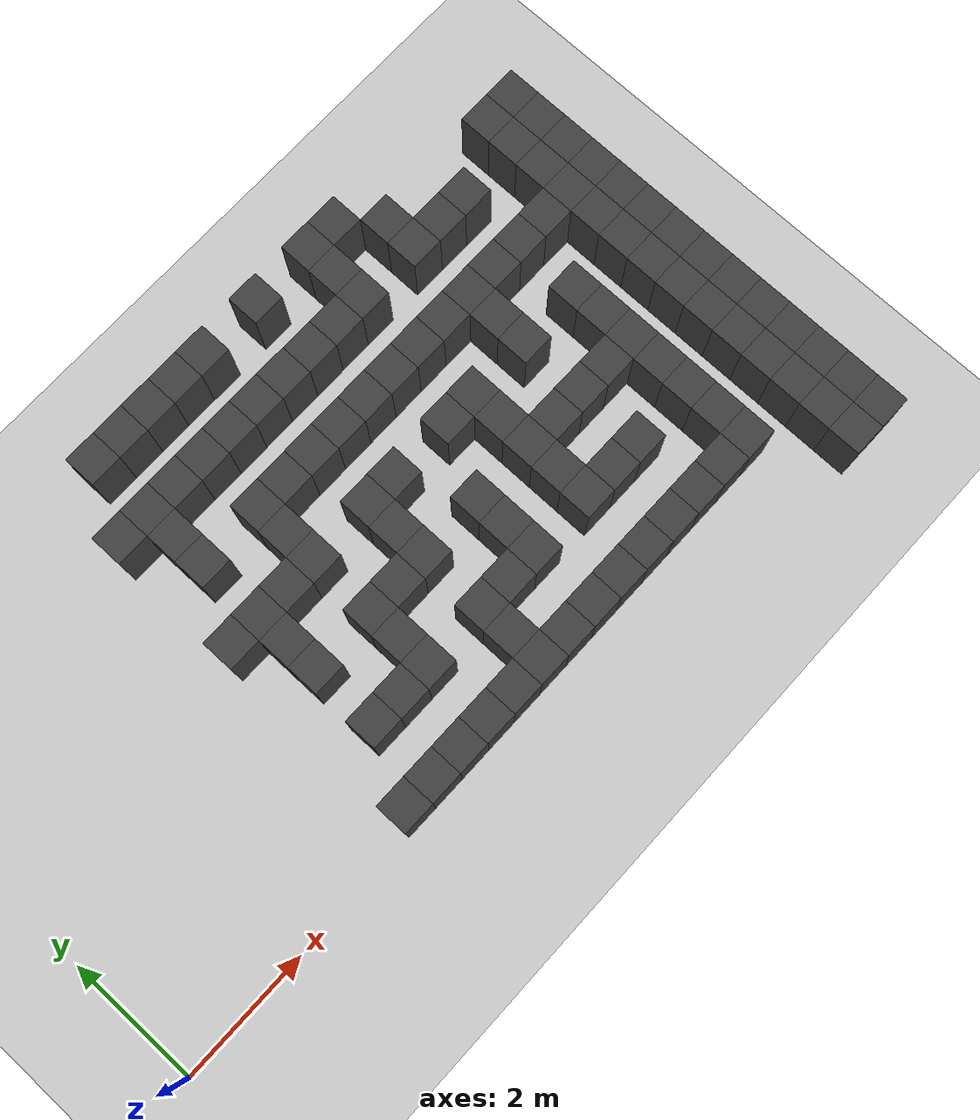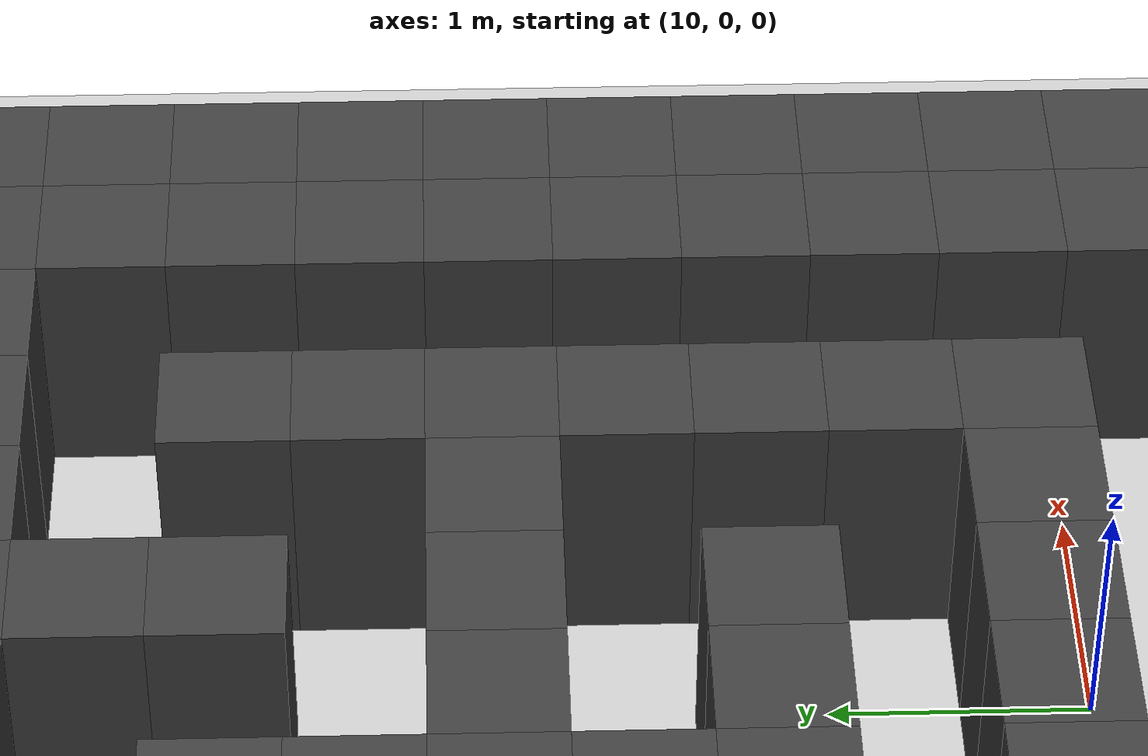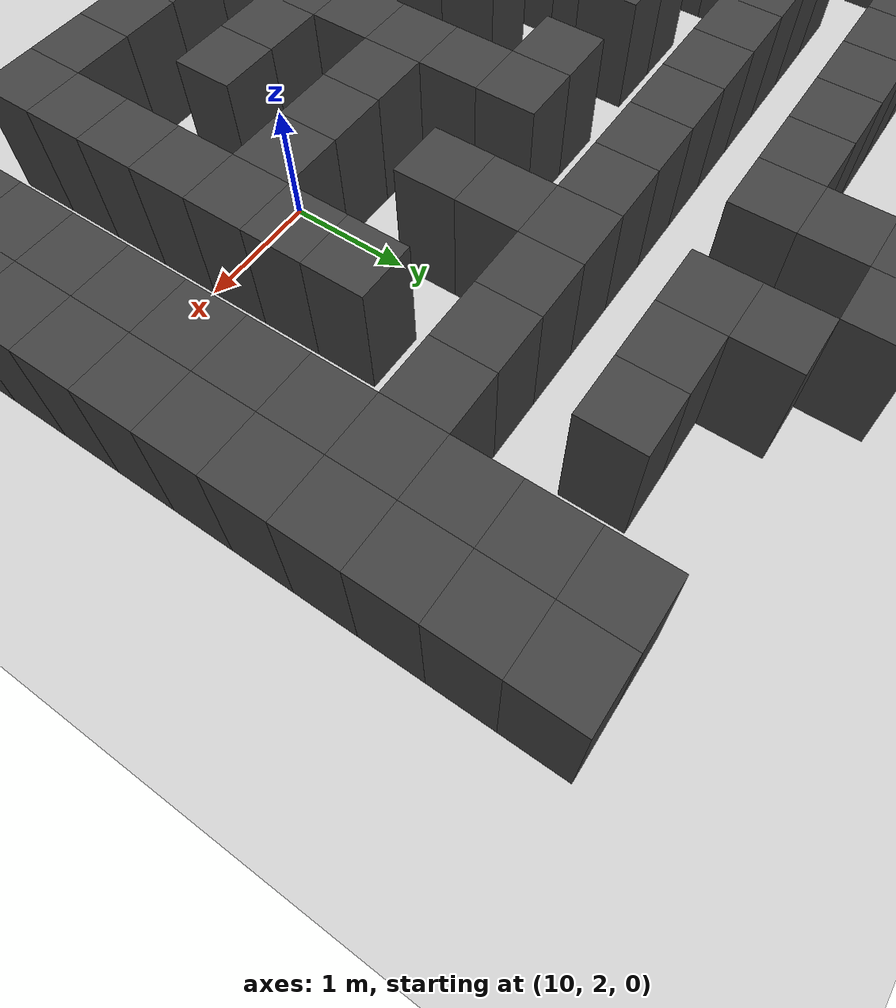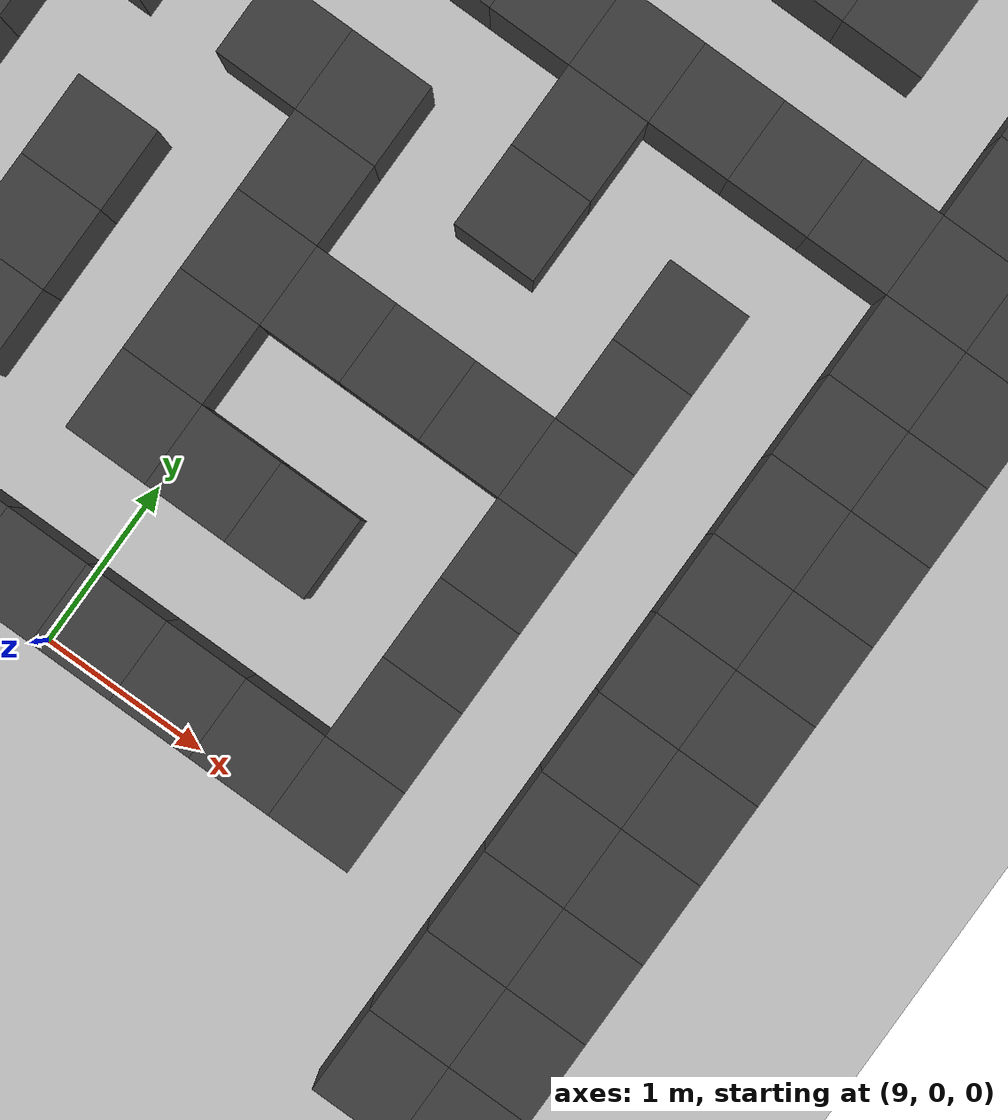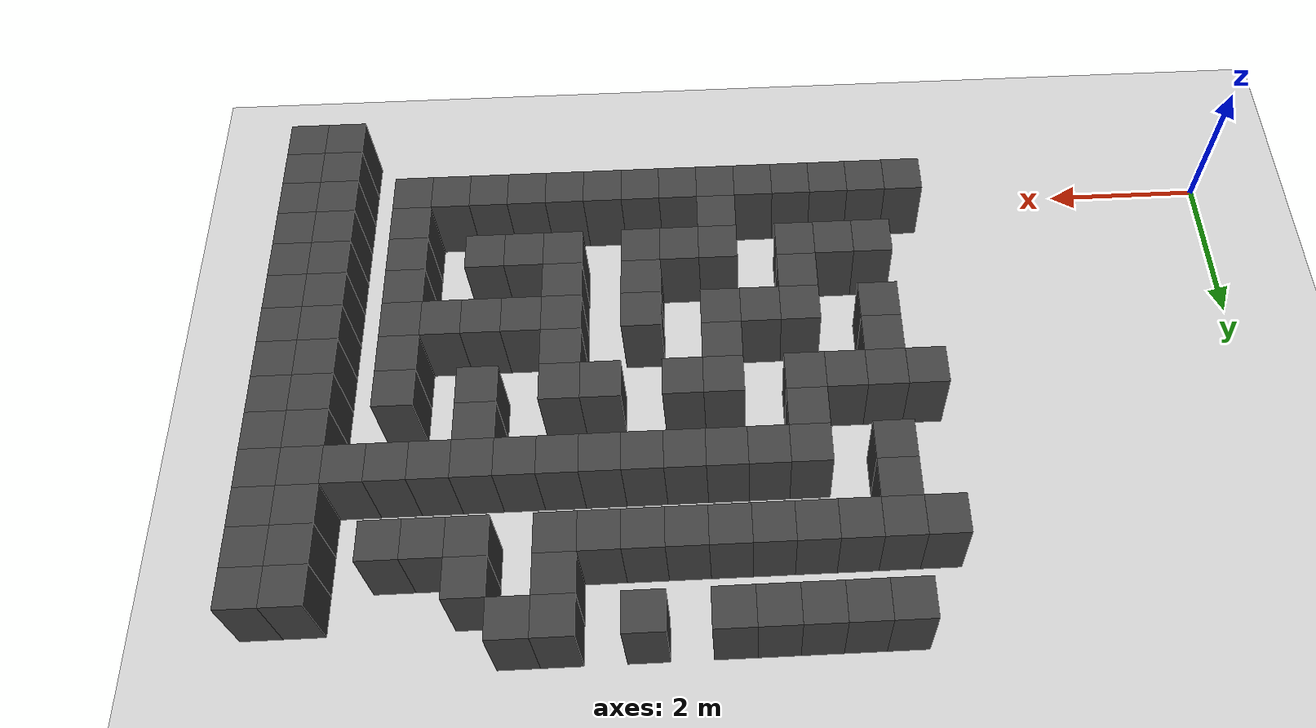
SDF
<sdf version="1.7">
 <world name="map_19217">
  <model name="ground_plane">
   <static>true</static>
   <link name="link">
    <collision name="collision">
     <geometry><plane><normal>0 0 1</normal><size>200 200</size></plane></geometry>
    </collision>
    <visual name="visual">
     <geometry><plane><normal>0 0 1</normal><size>200 200</size></plane></geometry>
     <material><ambient>0.8 0.8 0.8 1</ambient><diffuse>0.8 0.8 0.8 1</diffuse></material>
    </visual>
   </link>
  </model>
  <model name="maze_environment">
   <static>true</static>
   <link name="wall_337">
    <pose>4.750 6.250 0.500 0 0 0</pose>
    <collision name="col"><geometry><box><size>0.5 0.5 1.0</size></box></geometry></collision>
    <visual name="vis">
     <geometry><box><size>0.5 0.5 1.0</size></box></geometry>
     <material><ambient>0.15 0.15 0.15 1</ambient><diffuse>0.25 0.25 0.25 1</diffuse></material>
    </visual>
   </link>
   <link name="wall_338">
    <pose>5.250 6.250 0.500 0 0 0</pose>
    <collision name="col"><geometry><box><size>0.5 0.5 1.0</size></box></geometry></collision>
    <visual name="vis">
     <geometry><box><size>0.5 0.5 1.0</size></box></geometry>
     <material><ambient>0.15 0.15 0.15 1</ambient><diffuse>0.25 0.25 0.25 1</diffuse></material>
    </visual>
   </link>
   <link name="wall_339">
    <pose>5.750 6.250 0.500 0 0 0</pose>
    <collision name="col"><geometry><box><size>0.5 0.5 1.0</size></box></geometry></collision>
    <visual name="vis">
     <geometry><box><size>0.5 0.5 1.0</size></box></geometry>
     <material><ambient>0.15 0.15 0.15 1</ambient><diffuse>0.25 0.25 0.25 1</diffuse></material>
    </visual>
   </link>
   <link name="wall_340">
    <pose>6.250 6.250 0.500 0 0 0</pose>
    <collision name="col"><geometry><box><size>0.5 0.5 1.0</size></box></geometry></collision>
    <visual name="vis">
     <geometry><box><size>0.5 0.5 1.0</size></box></geometry>
     <material><ambient>0.15 0.15 0.15 1</ambient><diffuse>0.25 0.25 0.25 1</diffuse></material>
    </visual>
   </link>
   <link name="wall_341">
    <pose>6.750 6.250 0.500 0 0 0</pose>
    <collision name="col"><geometry><box><size>0.5 0.5 1.0</size></box></geometry></collision>
    <visual name="vis">
     <geometry><box><size>0.5 0.5 1.0</size></box></geometry>
     <material><ambient>0.15 0.15 0.15 1</ambient><diffuse>0.25 0.25 0.25 1</diffuse></material>
    </visual>
   </link>
   <link name="wall_342">
    <pose>7.750 6.250 0.500 0 0 0</pose>
    <collision name="col"><geometry><box><size>0.5 0.5 1.0</size></box></geometry></collision>
    <visual name="vis">
     <geometry><box><size>0.5 0.5 1.0</size></box></geometry>
     <material><ambient>0.15 0.15 0.15 1</ambient><diffuse>0.25 0.25 0.25 1</diffuse></material>
    </visual>
   </link>
   <link name="wall_343">
    <pose>8.750 6.250 0.500 0 0 0</pose>
    <collision name="col"><geometry><box><size>0.5 0.5 1.0</size></box></geometry></collision>
    <visual name="vis">
     <geometry><box><size>0.5 0.5 1.0</size></box></geometry>
     <material><ambient>0.15 0.15 0.15 1</ambient><diffuse>0.25 0.25 0.25 1</diffuse></material>
    </visual>
   </link>
   <link name="wall_344">
    <pose>9.250 6.250 0.500 0 0 0</pose>
    <collision name="col"><geometry><box><size>0.5 0.5 1.0</size></box></geometry></collision>
    <visual name="vis">
     <geometry><box><size>0.5 0.5 1.0</size></box></geometry>
     <material><ambient>0.15 0.15 0.15 1</ambient><diffuse>0.25 0.25 0.25 1</diffuse></material>
    </visual>
   </link>
   <link name="wall_359">
    <pose>8.750 5.750 0.500 0 0 0</pose>
    <collision name="col"><geometry><box><size>0.5 0.5 1.0</size></box></geometry></collision>
    <visual name="vis">
     <geometry><box><size>0.5 0.5 1.0</size></box></geometry>
     <material><ambient>0.15 0.15 0.15 1</ambient><diffuse>0.25 0.25 0.25 1</diffuse></material>
    </visual>
   </link>
   <link name="wall_360">
    <pose>9.750 5.750 0.500 0 0 0</pose>
    <collision name="col"><geometry><box><size>0.5 0.5 1.0</size></box></geometry></collision>
    <visual name="vis">
     <geometry><box><size>0.5 0.5 1.0</size></box></geometry>
     <material><ambient>0.15 0.15 0.15 1</ambient><diffuse>0.25 0.25 0.25 1</diffuse></material>
    </visual>
   </link>
   <link name="wall_361">
    <pose>11.750 5.750 0.500 0 0 0</pose>
    <collision name="col"><geometry><box><size>0.5 0.5 1.0</size></box></geometry></collision>
    <visual name="vis">
     <geometry><box><size>0.5 0.5 1.0</size></box></geometry>
     <material><ambient>0.15 0.15 0.15 1</ambient><diffuse>0.25 0.25 0.25 1</diffuse></material>
    </visual>
   </link>
   <link name="wall_362">
    <pose>12.250 5.750 0.500 0 0 0</pose>
    <collision name="col"><geometry><box><size>0.5 0.5 1.0</size></box></geometry></collision>
    <visual name="vis">
     <geometry><box><size>0.5 0.5 1.0</size></box></geometry>
     <material><ambient>0.15 0.15 0.15 1</ambient><diffuse>0.25 0.25 0.25 1</diffuse></material>
    </visual>
   </link>
   <link name="wall_387">
    <pose>4.250 5.250 0.500 0 0 0</pose>
    <collision name="col"><geometry><box><size>0.5 0.5 1.0</size></box></geometry></collision>
    <visual name="vis">
     <geometry><box><size>0.5 0.5 1.0</size></box></geometry>
     <material><ambient>0.15 0.15 0.15 1</ambient><diffuse>0.25 0.25 0.25 1</diffuse></material>
    </visual>
   </link>
   <link name="wall_388">
    <pose>4.750 5.250 0.500 0 0 0</pose>
    <collision name="col"><geometry><box><size>0.5 0.5 1.0</size></box></geometry></collision>
    <visual name="vis">
     <geometry><box><size>0.5 0.5 1.0</size></box></geometry>
     <material><ambient>0.15 0.15 0.15 1</ambient><diffuse>0.25 0.25 0.25 1</diffuse></material>
    </visual>
   </link>
   <link name="wall_389">
    <pose>5.250 5.250 0.500 0 0 0</pose>
    <collision name="col"><geometry><box><size>0.5 0.5 1.0</size></box></geometry></collision>
    <visual name="vis">
     <geometry><box><size>0.5 0.5 1.0</size></box></geometry>
     <material><ambient>0.15 0.15 0.15 1</ambient><diffuse>0.25 0.25 0.25 1</diffuse></material>
    </visual>
   </link>
   <link name="wall_390">
    <pose>5.750 5.250 0.500 0 0 0</pose>
    <collision name="col"><geometry><box><size>0.5 0.5 1.0</size></box></geometry></collision>
    <visual name="vis">
     <geometry><box><size>0.5 0.5 1.0</size></box></geometry>
     <material><ambient>0.15 0.15 0.15 1</ambient><diffuse>0.25 0.25 0.25 1</diffuse></material>
    </visual>
   </link>
   <link name="wall_391">
    <pose>6.250 5.250 0.500 0 0 0</pose>
    <collision name="col"><geometry><box><size>0.5 0.5 1.0</size></box></geometry></collision>
    <visual name="vis">
     <geometry><box><size>0.5 0.5 1.0</size></box></geometry>
     <material><ambient>0.15 0.15 0.15 1</ambient><diffuse>0.25 0.25 0.25 1</diffuse></material>
    </visual>
   </link>
   <link name="wall_392">
    <pose>6.750 5.250 0.500 0 0 0</pose>
    <collision name="col"><geometry><box><size>0.5 0.5 1.0</size></box></geometry></collision>
    <visual name="vis">
     <geometry><box><size>0.5 0.5 1.0</size></box></geometry>
     <material><ambient>0.15 0.15 0.15 1</ambient><diffuse>0.25 0.25 0.25 1</diffuse></material>
    </visual>
   </link>
   <link name="wall_393">
    <pose>7.250 5.250 0.500 0 0 0</pose>
    <collision name="col"><geometry><box><size>0.5 0.5 1.0</size></box></geometry></collision>
    <visual name="vis">
     <geometry><box><size>0.5 0.5 1.0</size></box></geometry>
     <material><ambient>0.15 0.15 0.15 1</ambient><diffuse>0.25 0.25 0.25 1</diffuse></material>
    </visual>
   </link>
   <link name="wall_394">
    <pose>7.750 5.250 0.500 0 0 0</pose>
    <collision name="col"><geometry><box><size>0.5 0.5 1.0</size></box></geometry></collision>
    <visual name="vis">
     <geometry><box><size>0.5 0.5 1.0</size></box></geometry>
     <material><ambient>0.15 0.15 0.15 1</ambient><diffuse>0.25 0.25 0.25 1</diffuse></material>
    </visual>
   </link>
   <link name="wall_395">
    <pose>8.250 5.250 0.500 0 0 0</pose>
    <collision name="col"><geometry><box><size>0.5 0.5 1.0</size></box></geometry></collision>
    <visual name="vis">
     <geometry><box><size>0.5 0.5 1.0</size></box></geometry>
     <material><ambient>0.15 0.15 0.15 1</ambient><diffuse>0.25 0.25 0.25 1</diffuse></material>
    </visual>
   </link>
   <link name="wall_396">
    <pose>8.750 5.250 0.500 0 0 0</pose>
    <collision name="col"><geometry><box><size>0.5 0.5 1.0</size></box></geometry></collision>
    <visual name="vis">
     <geometry><box><size>0.5 0.5 1.0</size></box></geometry>
     <material><ambient>0.15 0.15 0.15 1</ambient><diffuse>0.25 0.25 0.25 1</diffuse></material>
    </visual>
   </link>
   <link name="wall_397">
    <pose>9.750 5.250 0.500 0 0 0</pose>
    <collision name="col"><geometry><box><size>0.5 0.5 1.0</size></box></geometry></collision>
    <visual name="vis">
     <geometry><box><size>0.5 0.5 1.0</size></box></geometry>
     <material><ambient>0.15 0.15 0.15 1</ambient><diffuse>0.25 0.25 0.25 1</diffuse></material>
    </visual>
   </link>
   <link name="wall_398">
    <pose>10.250 5.250 0.500 0 0 0</pose>
    <collision name="col"><geometry><box><size>0.5 0.5 1.0</size></box></geometry></collision>
    <visual name="vis">
     <geometry><box><size>0.5 0.5 1.0</size></box></geometry>
     <material><ambient>0.15 0.15 0.15 1</ambient><diffuse>0.25 0.25 0.25 1</diffuse></material>
    </visual>
   </link>
   <link name="wall_399">
    <pose>10.750 5.250 0.500 0 0 0</pose>
    <collision name="col"><geometry><box><size>0.5 0.5 1.0</size></box></geometry></collision>
    <visual name="vis">
     <geometry><box><size>0.5 0.5 1.0</size></box></geometry>
     <material><ambient>0.15 0.15 0.15 1</ambient><diffuse>0.25 0.25 0.25 1</diffuse></material>
    </visual>
   </link>
   <link name="wall_400">
    <pose>11.750 5.250 0.500 0 0 0</pose>
    <collision name="col"><geometry><box><size>0.5 0.5 1.0</size></box></geometry></collision>
    <visual name="vis">
     <geometry><box><size>0.5 0.5 1.0</size></box></geometry>
     <material><ambient>0.15 0.15 0.15 1</ambient><diffuse>0.25 0.25 0.25 1</diffuse></material>
    </visual>
   </link>
   <link name="wall_401">
    <pose>12.250 5.250 0.500 0 0 0</pose>
    <collision name="col"><geometry><box><size>0.5 0.5 1.0</size></box></geometry></collision>
    <visual name="vis">
     <geometry><box><size>0.5 0.5 1.0</size></box></geometry>
     <material><ambient>0.15 0.15 0.15 1</ambient><diffuse>0.25 0.25 0.25 1</diffuse></material>
    </visual>
   </link>
   <link name="wall_410">
    <pose>4.750 4.750 0.500 0 0 0</pose>
    <collision name="col"><geometry><box><size>0.5 0.5 1.0</size></box></geometry></collision>
    <visual name="vis">
     <geometry><box><size>0.5 0.5 1.0</size></box></geometry>
     <material><ambient>0.15 0.15 0.15 1</ambient><diffuse>0.25 0.25 0.25 1</diffuse></material>
    </visual>
   </link>
   <link name="wall_411">
    <pose>11.750 4.750 0.500 0 0 0</pose>
    <collision name="col"><geometry><box><size>0.5 0.5 1.0</size></box></geometry></collision>
    <visual name="vis">
     <geometry><box><size>0.5 0.5 1.0</size></box></geometry>
     <material><ambient>0.15 0.15 0.15 1</ambient><diffuse>0.25 0.25 0.25 1</diffuse></material>
    </visual>
   </link>
   <link name="wall_412">
    <pose>12.250 4.750 0.500 0 0 0</pose>
    <collision name="col"><geometry><box><size>0.5 0.5 1.0</size></box></geometry></collision>
    <visual name="vis">
     <geometry><box><size>0.5 0.5 1.0</size></box></geometry>
     <material><ambient>0.15 0.15 0.15 1</ambient><diffuse>0.25 0.25 0.25 1</diffuse></material>
    </visual>
   </link>
   <link name="wall_439">
    <pose>4.750 4.250 0.500 0 0 0</pose>
    <collision name="col"><geometry><box><size>0.5 0.5 1.0</size></box></geometry></collision>
    <visual name="vis">
     <geometry><box><size>0.5 0.5 1.0</size></box></geometry>
     <material><ambient>0.15 0.15 0.15 1</ambient><diffuse>0.25 0.25 0.25 1</diffuse></material>
    </visual>
   </link>
   <link name="wall_440">
    <pose>5.750 4.250 0.500 0 0 0</pose>
    <collision name="col"><geometry><box><size>0.5 0.5 1.0</size></box></geometry></collision>
    <visual name="vis">
     <geometry><box><size>0.5 0.5 1.0</size></box></geometry>
     <material><ambient>0.15 0.15 0.15 1</ambient><diffuse>0.25 0.25 0.25 1</diffuse></material>
    </visual>
   </link>
   <link name="wall_441">
    <pose>6.250 4.250 0.500 0 0 0</pose>
    <collision name="col"><geometry><box><size>0.5 0.5 1.0</size></box></geometry></collision>
    <visual name="vis">
     <geometry><box><size>0.5 0.5 1.0</size></box></geometry>
     <material><ambient>0.15 0.15 0.15 1</ambient><diffuse>0.25 0.25 0.25 1</diffuse></material>
    </visual>
   </link>
   <link name="wall_442">
    <pose>6.750 4.250 0.500 0 0 0</pose>
    <collision name="col"><geometry><box><size>0.5 0.5 1.0</size></box></geometry></collision>
    <visual name="vis">
     <geometry><box><size>0.5 0.5 1.0</size></box></geometry>
     <material><ambient>0.15 0.15 0.15 1</ambient><diffuse>0.25 0.25 0.25 1</diffuse></material>
    </visual>
   </link>
   <link name="wall_443">
    <pose>7.250 4.250 0.500 0 0 0</pose>
    <collision name="col"><geometry><box><size>0.5 0.5 1.0</size></box></geometry></collision>
    <visual name="vis">
     <geometry><box><size>0.5 0.5 1.0</size></box></geometry>
     <material><ambient>0.15 0.15 0.15 1</ambient><diffuse>0.25 0.25 0.25 1</diffuse></material>
    </visual>
   </link>
   <link name="wall_444">
    <pose>7.750 4.250 0.500 0 0 0</pose>
    <collision name="col"><geometry><box><size>0.5 0.5 1.0</size></box></geometry></collision>
    <visual name="vis">
     <geometry><box><size>0.5 0.5 1.0</size></box></geometry>
     <material><ambient>0.15 0.15 0.15 1</ambient><diffuse>0.25 0.25 0.25 1</diffuse></material>
    </visual>
   </link>
   <link name="wall_445">
    <pose>8.250 4.250 0.500 0 0 0</pose>
    <collision name="col"><geometry><box><size>0.5 0.5 1.0</size></box></geometry></collision>
    <visual name="vis">
     <geometry><box><size>0.5 0.5 1.0</size></box></geometry>
     <material><ambient>0.15 0.15 0.15 1</ambient><diffuse>0.25 0.25 0.25 1</diffuse></material>
    </visual>
   </link>
   <link name="wall_446">
    <pose>8.750 4.250 0.500 0 0 0</pose>
    <collision name="col"><geometry><box><size>0.5 0.5 1.0</size></box></geometry></collision>
    <visual name="vis">
     <geometry><box><size>0.5 0.5 1.0</size></box></geometry>
     <material><ambient>0.15 0.15 0.15 1</ambient><diffuse>0.25 0.25 0.25 1</diffuse></material>
    </visual>
   </link>
   <link name="wall_447">
    <pose>9.250 4.250 0.500 0 0 0</pose>
    <collision name="col"><geometry><box><size>0.5 0.5 1.0</size></box></geometry></collision>
    <visual name="vis">
     <geometry><box><size>0.5 0.5 1.0</size></box></geometry>
     <material><ambient>0.15 0.15 0.15 1</ambient><diffuse>0.25 0.25 0.25 1</diffuse></material>
    </visual>
   </link>
   <link name="wall_448">
    <pose>9.750 4.250 0.500 0 0 0</pose>
    <collision name="col"><geometry><box><size>0.5 0.5 1.0</size></box></geometry></collision>
    <visual name="vis">
     <geometry><box><size>0.5 0.5 1.0</size></box></geometry>
     <material><ambient>0.15 0.15 0.15 1</ambient><diffuse>0.25 0.25 0.25 1</diffuse></material>
    </visual>
   </link>
   <link name="wall_449">
    <pose>10.250 4.250 0.500 0 0 0</pose>
    <collision name="col"><geometry><box><size>0.5 0.5 1.0</size></box></geometry></collision>
    <visual name="vis">
     <geometry><box><size>0.5 0.5 1.0</size></box></geometry>
     <material><ambient>0.15 0.15 0.15 1</ambient><diffuse>0.25 0.25 0.25 1</diffuse></material>
    </visual>
   </link>
   <link name="wall_450">
    <pose>10.750 4.250 0.500 0 0 0</pose>
    <collision name="col"><geometry><box><size>0.5 0.5 1.0</size></box></geometry></collision>
    <visual name="vis">
     <geometry><box><size>0.5 0.5 1.0</size></box></geometry>
     <material><ambient>0.15 0.15 0.15 1</ambient><diffuse>0.25 0.25 0.25 1</diffuse></material>
    </visual>
   </link>
   <link name="wall_451">
    <pose>11.250 4.250 0.500 0 0 0</pose>
    <collision name="col"><geometry><box><size>0.5 0.5 1.0</size></box></geometry></collision>
    <visual name="vis">
     <geometry><box><size>0.5 0.5 1.0</size></box></geometry>
     <material><ambient>0.15 0.15 0.15 1</ambient><diffuse>0.25 0.25 0.25 1</diffuse></material>
    </visual>
   </link>
   <link name="wall_452">
    <pose>11.750 4.250 0.500 0 0 0</pose>
    <collision name="col"><geometry><box><size>0.5 0.5 1.0</size></box></geometry></collision>
    <visual name="vis">
     <geometry><box><size>0.5 0.5 1.0</size></box></geometry>
     <material><ambient>0.15 0.15 0.15 1</ambient><diffuse>0.25 0.25 0.25 1</diffuse></material>
    </visual>
   </link>
   <link name="wall_453">
    <pose>12.250 4.250 0.500 0 0 0</pose>
    <collision name="col"><geometry><box><size>0.5 0.5 1.0</size></box></geometry></collision>
    <visual name="vis">
     <geometry><box><size>0.5 0.5 1.0</size></box></geometry>
     <material><ambient>0.15 0.15 0.15 1</ambient><diffuse>0.25 0.25 0.25 1</diffuse></material>
    </visual>
   </link>
   <link name="wall_463">
    <pose>5.750 3.750 0.500 0 0 0</pose>
    <collision name="col"><geometry><box><size>0.5 0.5 1.0</size></box></geometry></collision>
    <visual name="vis">
     <geometry><box><size>0.5 0.5 1.0</size></box></geometry>
     <material><ambient>0.15 0.15 0.15 1</ambient><diffuse>0.25 0.25 0.25 1</diffuse></material>
    </visual>
   </link>
   <link name="wall_464">
    <pose>9.750 3.750 0.500 0 0 0</pose>
    <collision name="col"><geometry><box><size>0.5 0.5 1.0</size></box></geometry></collision>
    <visual name="vis">
     <geometry><box><size>0.5 0.5 1.0</size></box></geometry>
     <material><ambient>0.15 0.15 0.15 1</ambient><diffuse>0.25 0.25 0.25 1</diffuse></material>
    </visual>
   </link>
   <link name="wall_465">
    <pose>11.750 3.750 0.500 0 0 0</pose>
    <collision name="col"><geometry><box><size>0.5 0.5 1.0</size></box></geometry></collision>
    <visual name="vis">
     <geometry><box><size>0.5 0.5 1.0</size></box></geometry>
     <material><ambient>0.15 0.15 0.15 1</ambient><diffuse>0.25 0.25 0.25 1</diffuse></material>
    </visual>
   </link>
   <link name="wall_466">
    <pose>12.250 3.750 0.500 0 0 0</pose>
    <collision name="col"><geometry><box><size>0.5 0.5 1.0</size></box></geometry></collision>
    <visual name="vis">
     <geometry><box><size>0.5 0.5 1.0</size></box></geometry>
     <material><ambient>0.15 0.15 0.15 1</ambient><diffuse>0.25 0.25 0.25 1</diffuse></material>
    </visual>
   </link>
   <link name="wall_488">
    <pose>4.250 3.250 0.500 0 0 0</pose>
    <collision name="col"><geometry><box><size>0.5 0.5 1.0</size></box></geometry></collision>
    <visual name="vis">
     <geometry><box><size>0.5 0.5 1.0</size></box></geometry>
     <material><ambient>0.15 0.15 0.15 1</ambient><diffuse>0.25 0.25 0.25 1</diffuse></material>
    </visual>
   </link>
   <link name="wall_489">
    <pose>4.750 3.250 0.500 0 0 0</pose>
    <collision name="col"><geometry><box><size>0.5 0.5 1.0</size></box></geometry></collision>
    <visual name="vis">
     <geometry><box><size>0.5 0.5 1.0</size></box></geometry>
     <material><ambient>0.15 0.15 0.15 1</ambient><diffuse>0.25 0.25 0.25 1</diffuse></material>
    </visual>
   </link>
   <link name="wall_490">
    <pose>5.250 3.250 0.500 0 0 0</pose>
    <collision name="col"><geometry><box><size>0.5 0.5 1.0</size></box></geometry></collision>
    <visual name="vis">
     <geometry><box><size>0.5 0.5 1.0</size></box></geometry>
     <material><ambient>0.15 0.15 0.15 1</ambient><diffuse>0.25 0.25 0.25 1</diffuse></material>
    </visual>
   </link>
   <link name="wall_491">
    <pose>5.750 3.250 0.500 0 0 0</pose>
    <collision name="col"><geometry><box><size>0.5 0.5 1.0</size></box></geometry></collision>
    <visual name="vis">
     <geometry><box><size>0.5 0.5 1.0</size></box></geometry>
     <material><ambient>0.15 0.15 0.15 1</ambient><diffuse>0.25 0.25 0.25 1</diffuse></material>
    </visual>
   </link>
   <link name="wall_492">
    <pose>6.750 3.250 0.500 0 0 0</pose>
    <collision name="col"><geometry><box><size>0.5 0.5 1.0</size></box></geometry></collision>
    <visual name="vis">
     <geometry><box><size>0.5 0.5 1.0</size></box></geometry>
     <material><ambient>0.15 0.15 0.15 1</ambient><diffuse>0.25 0.25 0.25 1</diffuse></material>
    </visual>
   </link>
   <link name="wall_493">
    <pose>7.250 3.250 0.500 0 0 0</pose>
    <collision name="col"><geometry><box><size>0.5 0.5 1.0</size></box></geometry></collision>
    <visual name="vis">
     <geometry><box><size>0.5 0.5 1.0</size></box></geometry>
     <material><ambient>0.15 0.15 0.15 1</ambient><diffuse>0.25 0.25 0.25 1</diffuse></material>
    </visual>
   </link>
   <link name="wall_494">
    <pose>8.250 3.250 0.500 0 0 0</pose>
    <collision name="col"><geometry><box><size>0.5 0.5 1.0</size></box></geometry></collision>
    <visual name="vis">
     <geometry><box><size>0.5 0.5 1.0</size></box></geometry>
     <material><ambient>0.15 0.15 0.15 1</ambient><diffuse>0.25 0.25 0.25 1</diffuse></material>
    </visual>
   </link>
   <link name="wall_495">
    <pose>8.750 3.250 0.500 0 0 0</pose>
    <collision name="col"><geometry><box><size>0.5 0.5 1.0</size></box></geometry></collision>
    <visual name="vis">
     <geometry><box><size>0.5 0.5 1.0</size></box></geometry>
     <material><ambient>0.15 0.15 0.15 1</ambient><diffuse>0.25 0.25 0.25 1</diffuse></material>
    </visual>
   </link>
   <link name="wall_496">
    <pose>9.750 3.250 0.500 0 0 0</pose>
    <collision name="col"><geometry><box><size>0.5 0.5 1.0</size></box></geometry></collision>
    <visual name="vis">
     <geometry><box><size>0.5 0.5 1.0</size></box></geometry>
     <material><ambient>0.15 0.15 0.15 1</ambient><diffuse>0.25 0.25 0.25 1</diffuse></material>
    </visual>
   </link>
   <link name="wall_497">
    <pose>10.750 3.250 0.500 0 0 0</pose>
    <collision name="col"><geometry><box><size>0.5 0.5 1.0</size></box></geometry></collision>
    <visual name="vis">
     <geometry><box><size>0.5 0.5 1.0</size></box></geometry>
     <material><ambient>0.15 0.15 0.15 1</ambient><diffuse>0.25 0.25 0.25 1</diffuse></material>
    </visual>
   </link>
   <link name="wall_498">
    <pose>11.750 3.250 0.500 0 0 0</pose>
    <collision name="col"><geometry><box><size>0.5 0.5 1.0</size></box></geometry></collision>
    <visual name="vis">
     <geometry><box><size>0.5 0.5 1.0</size></box></geometry>
     <material><ambient>0.15 0.15 0.15 1</ambient><diffuse>0.25 0.25 0.25 1</diffuse></material>
    </visual>
   </link>
   <link name="wall_499">
    <pose>12.250 3.250 0.500 0 0 0</pose>
    <collision name="col"><geometry><box><size>0.5 0.5 1.0</size></box></geometry></collision>
    <visual name="vis">
     <geometry><box><size>0.5 0.5 1.0</size></box></geometry>
     <material><ambient>0.15 0.15 0.15 1</ambient><diffuse>0.25 0.25 0.25 1</diffuse></material>
    </visual>
   </link>
   <link name="wall_507">
    <pose>4.750 2.750 0.500 0 0 0</pose>
    <collision name="col"><geometry><box><size>0.5 0.5 1.0</size></box></geometry></collision>
    <visual name="vis">
     <geometry><box><size>0.5 0.5 1.0</size></box></geometry>
     <material><ambient>0.15 0.15 0.15 1</ambient><diffuse>0.25 0.25 0.25 1</diffuse></material>
    </visual>
   </link>
   <link name="wall_508">
    <pose>6.750 2.750 0.500 0 0 0</pose>
    <collision name="col"><geometry><box><size>0.5 0.5 1.0</size></box></geometry></collision>
    <visual name="vis">
     <geometry><box><size>0.5 0.5 1.0</size></box></geometry>
     <material><ambient>0.15 0.15 0.15 1</ambient><diffuse>0.25 0.25 0.25 1</diffuse></material>
    </visual>
   </link>
   <link name="wall_509">
    <pose>8.750 2.750 0.500 0 0 0</pose>
    <collision name="col"><geometry><box><size>0.5 0.5 1.0</size></box></geometry></collision>
    <visual name="vis">
     <geometry><box><size>0.5 0.5 1.0</size></box></geometry>
     <material><ambient>0.15 0.15 0.15 1</ambient><diffuse>0.25 0.25 0.25 1</diffuse></material>
    </visual>
   </link>
   <link name="wall_510">
    <pose>10.750 2.750 0.500 0 0 0</pose>
    <collision name="col"><geometry><box><size>0.5 0.5 1.0</size></box></geometry></collision>
    <visual name="vis">
     <geometry><box><size>0.5 0.5 1.0</size></box></geometry>
     <material><ambient>0.15 0.15 0.15 1</ambient><diffuse>0.25 0.25 0.25 1</diffuse></material>
    </visual>
   </link>
   <link name="wall_511">
    <pose>11.750 2.750 0.500 0 0 0</pose>
    <collision name="col"><geometry><box><size>0.5 0.5 1.0</size></box></geometry></collision>
    <visual name="vis">
     <geometry><box><size>0.5 0.5 1.0</size></box></geometry>
     <material><ambient>0.15 0.15 0.15 1</ambient><diffuse>0.25 0.25 0.25 1</diffuse></material>
    </visual>
   </link>
   <link name="wall_512">
    <pose>12.250 2.750 0.500 0 0 0</pose>
    <collision name="col"><geometry><box><size>0.5 0.5 1.0</size></box></geometry></collision>
    <visual name="vis">
     <geometry><box><size>0.5 0.5 1.0</size></box></geometry>
     <material><ambient>0.15 0.15 0.15 1</ambient><diffuse>0.25 0.25 0.25 1</diffuse></material>
    </visual>
   </link>
   <link name="wall_539">
    <pose>4.750 2.250 0.500 0 0 0</pose>
    <collision name="col"><geometry><box><size>0.5 0.5 1.0</size></box></geometry></collision>
    <visual name="vis">
     <geometry><box><size>0.5 0.5 1.0</size></box></geometry>
     <material><ambient>0.15 0.15 0.15 1</ambient><diffuse>0.25 0.25 0.25 1</diffuse></material>
    </visual>
   </link>
   <link name="wall_540">
    <pose>5.750 2.250 0.500 0 0 0</pose>
    <collision name="col"><geometry><box><size>0.5 0.5 1.0</size></box></geometry></collision>
    <visual name="vis">
     <geometry><box><size>0.5 0.5 1.0</size></box></geometry>
     <material><ambient>0.15 0.15 0.15 1</ambient><diffuse>0.25 0.25 0.25 1</diffuse></material>
    </visual>
   </link>
   <link name="wall_541">
    <pose>6.250 2.250 0.500 0 0 0</pose>
    <collision name="col"><geometry><box><size>0.5 0.5 1.0</size></box></geometry></collision>
    <visual name="vis">
     <geometry><box><size>0.5 0.5 1.0</size></box></geometry>
     <material><ambient>0.15 0.15 0.15 1</ambient><diffuse>0.25 0.25 0.25 1</diffuse></material>
    </visual>
   </link>
   <link name="wall_542">
    <pose>6.750 2.250 0.500 0 0 0</pose>
    <collision name="col"><geometry><box><size>0.5 0.5 1.0</size></box></geometry></collision>
    <visual name="vis">
     <geometry><box><size>0.5 0.5 1.0</size></box></geometry>
     <material><ambient>0.15 0.15 0.15 1</ambient><diffuse>0.25 0.25 0.25 1</diffuse></material>
    </visual>
   </link>
   <link name="wall_543">
    <pose>7.750 2.250 0.500 0 0 0</pose>
    <collision name="col"><geometry><box><size>0.5 0.5 1.0</size></box></geometry></collision>
    <visual name="vis">
     <geometry><box><size>0.5 0.5 1.0</size></box></geometry>
     <material><ambient>0.15 0.15 0.15 1</ambient><diffuse>0.25 0.25 0.25 1</diffuse></material>
    </visual>
   </link>
   <link name="wall_544">
    <pose>8.750 2.250 0.500 0 0 0</pose>
    <collision name="col"><geometry><box><size>0.5 0.5 1.0</size></box></geometry></collision>
    <visual name="vis">
     <geometry><box><size>0.5 0.5 1.0</size></box></geometry>
     <material><ambient>0.15 0.15 0.15 1</ambient><diffuse>0.25 0.25 0.25 1</diffuse></material>
    </visual>
   </link>
   <link name="wall_545">
    <pose>9.250 2.250 0.500 0 0 0</pose>
    <collision name="col"><geometry><box><size>0.5 0.5 1.0</size></box></geometry></collision>
    <visual name="vis">
     <geometry><box><size>0.5 0.5 1.0</size></box></geometry>
     <material><ambient>0.15 0.15 0.15 1</ambient><diffuse>0.25 0.25 0.25 1</diffuse></material>
    </visual>
   </link>
   <link name="wall_546">
    <pose>9.750 2.250 0.500 0 0 0</pose>
    <collision name="col"><geometry><box><size>0.5 0.5 1.0</size></box></geometry></collision>
    <visual name="vis">
     <geometry><box><size>0.5 0.5 1.0</size></box></geometry>
     <material><ambient>0.15 0.15 0.15 1</ambient><diffuse>0.25 0.25 0.25 1</diffuse></material>
    </visual>
   </link>
   <link name="wall_547">
    <pose>10.250 2.250 0.500 0 0 0</pose>
    <collision name="col"><geometry><box><size>0.5 0.5 1.0</size></box></geometry></collision>
    <visual name="vis">
     <geometry><box><size>0.5 0.5 1.0</size></box></geometry>
     <material><ambient>0.15 0.15 0.15 1</ambient><diffuse>0.25 0.25 0.25 1</diffuse></material>
    </visual>
   </link>
   <link name="wall_548">
    <pose>10.750 2.250 0.500 0 0 0</pose>
    <collision name="col"><geometry><box><size>0.5 0.5 1.0</size></box></geometry></collision>
    <visual name="vis">
     <geometry><box><size>0.5 0.5 1.0</size></box></geometry>
     <material><ambient>0.15 0.15 0.15 1</ambient><diffuse>0.25 0.25 0.25 1</diffuse></material>
    </visual>
   </link>
   <link name="wall_549">
    <pose>11.750 2.250 0.500 0 0 0</pose>
    <collision name="col"><geometry><box><size>0.5 0.5 1.0</size></box></geometry></collision>
    <visual name="vis">
     <geometry><box><size>0.5 0.5 1.0</size></box></geometry>
     <material><ambient>0.15 0.15 0.15 1</ambient><diffuse>0.25 0.25 0.25 1</diffuse></material>
    </visual>
   </link>
   <link name="wall_550">
    <pose>12.250 2.250 0.500 0 0 0</pose>
    <collision name="col"><geometry><box><size>0.5 0.5 1.0</size></box></geometry></collision>
    <visual name="vis">
     <geometry><box><size>0.5 0.5 1.0</size></box></geometry>
     <material><ambient>0.15 0.15 0.15 1</ambient><diffuse>0.25 0.25 0.25 1</diffuse></material>
    </visual>
   </link>
   <link name="wall_560">
    <pose>5.750 1.750 0.500 0 0 0</pose>
    <collision name="col"><geometry><box><size>0.5 0.5 1.0</size></box></geometry></collision>
    <visual name="vis">
     <geometry><box><size>0.5 0.5 1.0</size></box></geometry>
     <material><ambient>0.15 0.15 0.15 1</ambient><diffuse>0.25 0.25 0.25 1</diffuse></material>
    </visual>
   </link>
   <link name="wall_561">
    <pose>7.750 1.750 0.500 0 0 0</pose>
    <collision name="col"><geometry><box><size>0.5 0.5 1.0</size></box></geometry></collision>
    <visual name="vis">
     <geometry><box><size>0.5 0.5 1.0</size></box></geometry>
     <material><ambient>0.15 0.15 0.15 1</ambient><diffuse>0.25 0.25 0.25 1</diffuse></material>
    </visual>
   </link>
   <link name="wall_562">
    <pose>8.750 1.750 0.500 0 0 0</pose>
    <collision name="col"><geometry><box><size>0.5 0.5 1.0</size></box></geometry></collision>
    <visual name="vis">
     <geometry><box><size>0.5 0.5 1.0</size></box></geometry>
     <material><ambient>0.15 0.15 0.15 1</ambient><diffuse>0.25 0.25 0.25 1</diffuse></material>
    </visual>
   </link>
   <link name="wall_563">
    <pose>10.750 1.750 0.500 0 0 0</pose>
    <collision name="col"><geometry><box><size>0.5 0.5 1.0</size></box></geometry></collision>
    <visual name="vis">
     <geometry><box><size>0.5 0.5 1.0</size></box></geometry>
     <material><ambient>0.15 0.15 0.15 1</ambient><diffuse>0.25 0.25 0.25 1</diffuse></material>
    </visual>
   </link>
   <link name="wall_564">
    <pose>11.750 1.750 0.500 0 0 0</pose>
    <collision name="col"><geometry><box><size>0.5 0.5 1.0</size></box></geometry></collision>
    <visual name="vis">
     <geometry><box><size>0.5 0.5 1.0</size></box></geometry>
     <material><ambient>0.15 0.15 0.15 1</ambient><diffuse>0.25 0.25 0.25 1</diffuse></material>
    </visual>
   </link>
   <link name="wall_565">
    <pose>12.250 1.750 0.500 0 0 0</pose>
    <collision name="col"><geometry><box><size>0.5 0.5 1.0</size></box></geometry></collision>
    <visual name="vis">
     <geometry><box><size>0.5 0.5 1.0</size></box></geometry>
     <material><ambient>0.15 0.15 0.15 1</ambient><diffuse>0.25 0.25 0.25 1</diffuse></material>
    </visual>
   </link>
   <link name="wall_590">
    <pose>4.750 1.250 0.500 0 0 0</pose>
    <collision name="col"><geometry><box><size>0.5 0.5 1.0</size></box></geometry></collision>
    <visual name="vis">
     <geometry><box><size>0.5 0.5 1.0</size></box></geometry>
     <material><ambient>0.15 0.15 0.15 1</ambient><diffuse>0.25 0.25 0.25 1</diffuse></material>
    </visual>
   </link>
   <link name="wall_591">
    <pose>5.250 1.250 0.500 0 0 0</pose>
    <collision name="col"><geometry><box><size>0.5 0.5 1.0</size></box></geometry></collision>
    <visual name="vis">
     <geometry><box><size>0.5 0.5 1.0</size></box></geometry>
     <material><ambient>0.15 0.15 0.15 1</ambient><diffuse>0.25 0.25 0.25 1</diffuse></material>
    </visual>
   </link>
   <link name="wall_592">
    <pose>5.750 1.250 0.500 0 0 0</pose>
    <collision name="col"><geometry><box><size>0.5 0.5 1.0</size></box></geometry></collision>
    <visual name="vis">
     <geometry><box><size>0.5 0.5 1.0</size></box></geometry>
     <material><ambient>0.15 0.15 0.15 1</ambient><diffuse>0.25 0.25 0.25 1</diffuse></material>
    </visual>
   </link>
   <link name="wall_593">
    <pose>6.750 1.250 0.500 0 0 0</pose>
    <collision name="col"><geometry><box><size>0.5 0.5 1.0</size></box></geometry></collision>
    <visual name="vis">
     <geometry><box><size>0.5 0.5 1.0</size></box></geometry>
     <material><ambient>0.15 0.15 0.15 1</ambient><diffuse>0.25 0.25 0.25 1</diffuse></material>
    </visual>
   </link>
   <link name="wall_594">
    <pose>7.250 1.250 0.500 0 0 0</pose>
    <collision name="col"><geometry><box><size>0.5 0.5 1.0</size></box></geometry></collision>
    <visual name="vis">
     <geometry><box><size>0.5 0.5 1.0</size></box></geometry>
     <material><ambient>0.15 0.15 0.15 1</ambient><diffuse>0.25 0.25 0.25 1</diffuse></material>
    </visual>
   </link>
   <link name="wall_595">
    <pose>7.750 1.250 0.500 0 0 0</pose>
    <collision name="col"><geometry><box><size>0.5 0.5 1.0</size></box></geometry></collision>
    <visual name="vis">
     <geometry><box><size>0.5 0.5 1.0</size></box></geometry>
     <material><ambient>0.15 0.15 0.15 1</ambient><diffuse>0.25 0.25 0.25 1</diffuse></material>
    </visual>
   </link>
   <link name="wall_596">
    <pose>8.750 1.250 0.500 0 0 0</pose>
    <collision name="col"><geometry><box><size>0.5 0.5 1.0</size></box></geometry></collision>
    <visual name="vis">
     <geometry><box><size>0.5 0.5 1.0</size></box></geometry>
     <material><ambient>0.15 0.15 0.15 1</ambient><diffuse>0.25 0.25 0.25 1</diffuse></material>
    </visual>
   </link>
   <link name="wall_597">
    <pose>9.250 1.250 0.500 0 0 0</pose>
    <collision name="col"><geometry><box><size>0.5 0.5 1.0</size></box></geometry></collision>
    <visual name="vis">
     <geometry><box><size>0.5 0.5 1.0</size></box></geometry>
     <material><ambient>0.15 0.15 0.15 1</ambient><diffuse>0.25 0.25 0.25 1</diffuse></material>
    </visual>
   </link>
   <link name="wall_598">
    <pose>9.750 1.250 0.500 0 0 0</pose>
    <collision name="col"><geometry><box><size>0.5 0.5 1.0</size></box></geometry></collision>
    <visual name="vis">
     <geometry><box><size>0.5 0.5 1.0</size></box></geometry>
     <material><ambient>0.15 0.15 0.15 1</ambient><diffuse>0.25 0.25 0.25 1</diffuse></material>
    </visual>
   </link>
   <link name="wall_599">
    <pose>10.750 1.250 0.500 0 0 0</pose>
    <collision name="col"><geometry><box><size>0.5 0.5 1.0</size></box></geometry></collision>
    <visual name="vis">
     <geometry><box><size>0.5 0.5 1.0</size></box></geometry>
     <material><ambient>0.15 0.15 0.15 1</ambient><diffuse>0.25 0.25 0.25 1</diffuse></material>
    </visual>
   </link>
   <link name="wall_600">
    <pose>11.750 1.250 0.500 0 0 0</pose>
    <collision name="col"><geometry><box><size>0.5 0.5 1.0</size></box></geometry></collision>
    <visual name="vis">
     <geometry><box><size>0.5 0.5 1.0</size></box></geometry>
     <material><ambient>0.15 0.15 0.15 1</ambient><diffuse>0.25 0.25 0.25 1</diffuse></material>
    </visual>
   </link>
   <link name="wall_601">
    <pose>12.250 1.250 0.500 0 0 0</pose>
    <collision name="col"><geometry><box><size>0.5 0.5 1.0</size></box></geometry></collision>
    <visual name="vis">
     <geometry><box><size>0.5 0.5 1.0</size></box></geometry>
     <material><ambient>0.15 0.15 0.15 1</ambient><diffuse>0.25 0.25 0.25 1</diffuse></material>
    </visual>
   </link>
   <link name="wall_611">
    <pose>6.750 0.750 0.500 0 0 0</pose>
    <collision name="col"><geometry><box><size>0.5 0.5 1.0</size></box></geometry></collision>
    <visual name="vis">
     <geometry><box><size>0.5 0.5 1.0</size></box></geometry>
     <material><ambient>0.15 0.15 0.15 1</ambient><diffuse>0.25 0.25 0.25 1</diffuse></material>
    </visual>
   </link>
   <link name="wall_612">
    <pose>10.750 0.750 0.500 0 0 0</pose>
    <collision name="col"><geometry><box><size>0.5 0.5 1.0</size></box></geometry></collision>
    <visual name="vis">
     <geometry><box><size>0.5 0.5 1.0</size></box></geometry>
     <material><ambient>0.15 0.15 0.15 1</ambient><diffuse>0.25 0.25 0.25 1</diffuse></material>
    </visual>
   </link>
   <link name="wall_613">
    <pose>11.750 0.750 0.500 0 0 0</pose>
    <collision name="col"><geometry><box><size>0.5 0.5 1.0</size></box></geometry></collision>
    <visual name="vis">
     <geometry><box><size>0.5 0.5 1.0</size></box></geometry>
     <material><ambient>0.15 0.15 0.15 1</ambient><diffuse>0.25 0.25 0.25 1</diffuse></material>
    </visual>
   </link>
   <link name="wall_614">
    <pose>12.250 0.750 0.500 0 0 0</pose>
    <collision name="col"><geometry><box><size>0.5 0.5 1.0</size></box></geometry></collision>
    <visual name="vis">
     <geometry><box><size>0.5 0.5 1.0</size></box></geometry>
     <material><ambient>0.15 0.15 0.15 1</ambient><diffuse>0.25 0.25 0.25 1</diffuse></material>
    </visual>
   </link>
   <link name="wall_638">
    <pose>4.250 0.250 0.500 0 0 0</pose>
    <collision name="col"><geometry><box><size>0.5 0.5 1.0</size></box></geometry></collision>
    <visual name="vis">
     <geometry><box><size>0.5 0.5 1.0</size></box></geometry>
     <material><ambient>0.15 0.15 0.15 1</ambient><diffuse>0.25 0.25 0.25 1</diffuse></material>
    </visual>
   </link>
   <link name="wall_639">
    <pose>4.750 0.250 0.500 0 0 0</pose>
    <collision name="col"><geometry><box><size>0.5 0.5 1.0</size></box></geometry></collision>
    <visual name="vis">
     <geometry><box><size>0.5 0.5 1.0</size></box></geometry>
     <material><ambient>0.15 0.15 0.15 1</ambient><diffuse>0.25 0.25 0.25 1</diffuse></material>
    </visual>
   </link>
   <link name="wall_640">
    <pose>5.250 0.250 0.500 0 0 0</pose>
    <collision name="col"><geometry><box><size>0.5 0.5 1.0</size></box></geometry></collision>
    <visual name="vis">
     <geometry><box><size>0.5 0.5 1.0</size></box></geometry>
     <material><ambient>0.15 0.15 0.15 1</ambient><diffuse>0.25 0.25 0.25 1</diffuse></material>
    </visual>
   </link>
   <link name="wall_641">
    <pose>5.750 0.250 0.500 0 0 0</pose>
    <collision name="col"><geometry><box><size>0.5 0.5 1.0</size></box></geometry></collision>
    <visual name="vis">
     <geometry><box><size>0.5 0.5 1.0</size></box></geometry>
     <material><ambient>0.15 0.15 0.15 1</ambient><diffuse>0.25 0.25 0.25 1</diffuse></material>
    </visual>
   </link>
   <link name="wall_642">
    <pose>6.250 0.250 0.500 0 0 0</pose>
    <collision name="col"><geometry><box><size>0.5 0.5 1.0</size></box></geometry></collision>
    <visual name="vis">
     <geometry><box><size>0.5 0.5 1.0</size></box></geometry>
     <material><ambient>0.15 0.15 0.15 1</ambient><diffuse>0.25 0.25 0.25 1</diffuse></material>
    </visual>
   </link>
   <link name="wall_643">
    <pose>6.750 0.250 0.500 0 0 0</pose>
    <collision name="col"><geometry><box><size>0.5 0.5 1.0</size></box></geometry></collision>
    <visual name="vis">
     <geometry><box><size>0.5 0.5 1.0</size></box></geometry>
     <material><ambient>0.15 0.15 0.15 1</ambient><diffuse>0.25 0.25 0.25 1</diffuse></material>
    </visual>
   </link>
   <link name="wall_644">
    <pose>7.250 0.250 0.500 0 0 0</pose>
    <collision name="col"><geometry><box><size>0.5 0.5 1.0</size></box></geometry></collision>
    <visual name="vis">
     <geometry><box><size>0.5 0.5 1.0</size></box></geometry>
     <material><ambient>0.15 0.15 0.15 1</ambient><diffuse>0.25 0.25 0.25 1</diffuse></material>
    </visual>
   </link>
   <link name="wall_645">
    <pose>7.750 0.250 0.500 0 0 0</pose>
    <collision name="col"><geometry><box><size>0.5 0.5 1.0</size></box></geometry></collision>
    <visual name="vis">
     <geometry><box><size>0.5 0.5 1.0</size></box></geometry>
     <material><ambient>0.15 0.15 0.15 1</ambient><diffuse>0.25 0.25 0.25 1</diffuse></material>
    </visual>
   </link>
   <link name="wall_646">
    <pose>8.250 0.250 0.500 0 0 0</pose>
    <collision name="col"><geometry><box><size>0.5 0.5 1.0</size></box></geometry></collision>
    <visual name="vis">
     <geometry><box><size>0.5 0.5 1.0</size></box></geometry>
     <material><ambient>0.15 0.15 0.15 1</ambient><diffuse>0.25 0.25 0.25 1</diffuse></material>
    </visual>
   </link>
   <link name="wall_647">
    <pose>8.750 0.250 0.500 0 0 0</pose>
    <collision name="col"><geometry><box><size>0.5 0.5 1.0</size></box></geometry></collision>
    <visual name="vis">
     <geometry><box><size>0.5 0.5 1.0</size></box></geometry>
     <material><ambient>0.15 0.15 0.15 1</ambient><diffuse>0.25 0.25 0.25 1</diffuse></material>
    </visual>
   </link>
   <link name="wall_648">
    <pose>9.250 0.250 0.500 0 0 0</pose>
    <collision name="col"><geometry><box><size>0.5 0.5 1.0</size></box></geometry></collision>
    <visual name="vis">
     <geometry><box><size>0.5 0.5 1.0</size></box></geometry>
     <material><ambient>0.15 0.15 0.15 1</ambient><diffuse>0.25 0.25 0.25 1</diffuse></material>
    </visual>
   </link>
   <link name="wall_649">
    <pose>9.750 0.250 0.500 0 0 0</pose>
    <collision name="col"><geometry><box><size>0.5 0.5 1.0</size></box></geometry></collision>
    <visual name="vis">
     <geometry><box><size>0.5 0.5 1.0</size></box></geometry>
     <material><ambient>0.15 0.15 0.15 1</ambient><diffuse>0.25 0.25 0.25 1</diffuse></material>
    </visual>
   </link>
   <link name="wall_650">
    <pose>10.250 0.250 0.500 0 0 0</pose>
    <collision name="col"><geometry><box><size>0.5 0.5 1.0</size></box></geometry></collision>
    <visual name="vis">
     <geometry><box><size>0.5 0.5 1.0</size></box></geometry>
     <material><ambient>0.15 0.15 0.15 1</ambient><diffuse>0.25 0.25 0.25 1</diffuse></material>
    </visual>
   </link>
   <link name="wall_651">
    <pose>10.750 0.250 0.500 0 0 0</pose>
    <collision name="col"><geometry><box><size>0.5 0.5 1.0</size></box></geometry></collision>
    <visual name="vis">
     <geometry><box><size>0.5 0.5 1.0</size></box></geometry>
     <material><ambient>0.15 0.15 0.15 1</ambient><diffuse>0.25 0.25 0.25 1</diffuse></material>
    </visual>
   </link>
   <link name="wall_652">
    <pose>11.750 0.250 0.500 0 0 0</pose>
    <collision name="col"><geometry><box><size>0.5 0.5 1.0</size></box></geometry></collision>
    <visual name="vis">
     <geometry><box><size>0.5 0.5 1.0</size></box></geometry>
     <material><ambient>0.15 0.15 0.15 1</ambient><diffuse>0.25 0.25 0.25 1</diffuse></material>
    </visual>
   </link>
   <link name="wall_653">
    <pose>12.250 0.250 0.500 0 0 0</pose>
    <collision name="col"><geometry><box><size>0.5 0.5 1.0</size></box></geometry></collision>
    <visual name="vis">
     <geometry><box><size>0.5 0.5 1.0</size></box></geometry>
     <material><ambient>0.15 0.15 0.15 1</ambient><diffuse>0.25 0.25 0.25 1</diffuse></material>
    </visual>
   </link>
   <link name="wall_662">
    <pose>11.750 -0.250 0.500 0 0 0</pose>
    <collision name="col"><geometry><box><size>0.5 0.5 1.0</size></box></geometry></collision>
    <visual name="vis">
     <geometry><box><size>0.5 0.5 1.0</size></box></geometry>
     <material><ambient>0.15 0.15 0.15 1</ambient><diffuse>0.25 0.25 0.25 1</diffuse></material>
    </visual>
   </link>
   <link name="wall_663">
    <pose>12.250 -0.250 0.500 0 0 0</pose>
    <collision name="col"><geometry><box><size>0.5 0.5 1.0</size></box></geometry></collision>
    <visual name="vis">
     <geometry><box><size>0.5 0.5 1.0</size></box></geometry>
     <material><ambient>0.15 0.15 0.15 1</ambient><diffuse>0.25 0.25 0.25 1</diffuse></material>
    </visual>
   </link>
   <link name="wall_706">
    <pose>11.750 -0.750 0.500 0 0 0</pose>
    <collision name="col"><geometry><box><size>0.5 0.5 1.0</size></box></geometry></collision>
    <visual name="vis">
     <geometry><box><size>0.5 0.5 1.0</size></box></geometry>
     <material><ambient>0.15 0.15 0.15 1</ambient><diffuse>0.25 0.25 0.25 1</diffuse></material>
    </visual>
   </link>
   <link name="wall_707">
    <pose>12.250 -0.750 0.500 0 0 0</pose>
    <collision name="col"><geometry><box><size>0.5 0.5 1.0</size></box></geometry></collision>
    <visual name="vis">
     <geometry><box><size>0.5 0.5 1.0</size></box></geometry>
     <material><ambient>0.15 0.15 0.15 1</ambient><diffuse>0.25 0.25 0.25 1</diffuse></material>
    </visual>
   </link>
  </model>
 </world>
</sdf>
